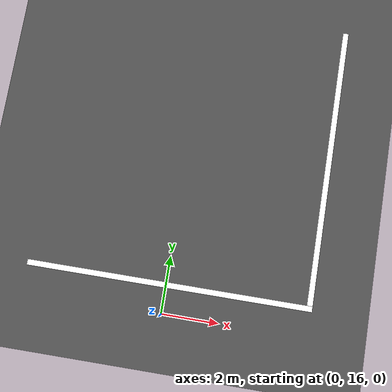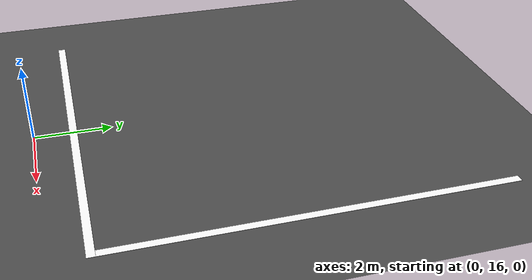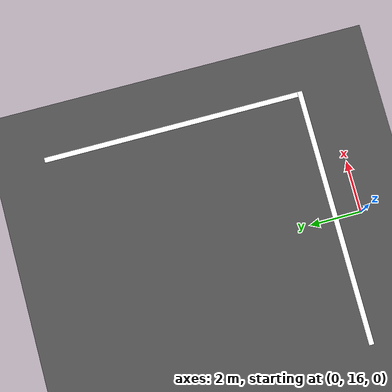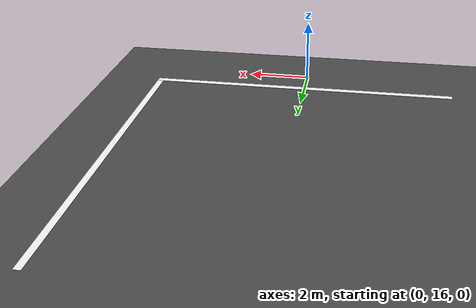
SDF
<?xml version="1.0" ?>
<sdf version='1.4'>
  <world name='default'>

    <physics type='ode'>
      <max_step_size>0.001</max_step_size>
      <real_time_factor>1</real_time_factor>
      <real_time_update_rate>1000</real_time_update_rate>
      <gravity>0 0 -9.8</gravity>
    </physics>

    <spherical_coordinates>
      <surface_model>EARTH_WGS84</surface_model>
      <latitude_deg>0</latitude_deg>
      <longitude_deg>0</longitude_deg>
      <elevation>0</elevation>
      <heading_deg>0</heading_deg>
    </spherical_coordinates>

    <!-- A global light source -->
   <scene>
      <sky>
        <clouds>
          <speed>12</speed>
        </clouds>
      </sky>
   </scene>

    <include>
      <uri>model://sun</uri>
    </include>

    <model name="ground_plane">
      <static>true</static>
      <link name="link">
        <collision name="collision">
          <geometry>
            <plane>
              <normal>0 0 1</normal>
              <size>100 100</size>
            </plane>
          </geometry>
          <surface>
            <friction>
              <ode>
                <mu>100</mu>
                <mu2>50</mu2>
              </ode>
            </friction>
          </surface>
        </collision>
        <visual name="visual">
          <cast_shadows>false</cast_shadows>
          <geometry>
            <plane>
              <normal>0 0 1</normal>
              <size>100 100</size>
            </plane>
          </geometry>
          <material>
            <script>
              <uri>model://asphalt_plane/materials/scripts</uri>
              <uri>model://asphalt_plane/materials/textures</uri>
              <name>vrc/asphalt</name>
            </script>
          </material>
        </visual>
      </link>
    </model>

    <model name='goal1'>
      <static>1</static>
      <pose>0.1 17.0 0.05 0 0 0</pose>
      <link name='link'>
        <visual name='visual'>
          <cast_shadows>0</cast_shadows>
          <geometry>
            <box>
              <size>10 0.2 0.01</size>
            </box>
          </geometry>
          <material>
            <ambient>1.0 1.0 1.0 1</ambient>
            <diffuse>1.0 1.0 1.0 1</diffuse>
            <specular>0.01 0.01 0.01 1</specular>
            <emissive>0 0 0 1</emissive>
          </material>
        </visual>
        <self_collide>0</self_collide>
        <kinematic>0</kinematic>
        <gravity>1</gravity>
      </link>
    </model>

    <model name='goal2'>
      <static>1</static>
      <pose>5.0 22.1 0.05 0 0 0</pose>
      <link name='link'>
        <visual name='visual'>
          <cast_shadows>0</cast_shadows>
          <geometry>
            <box>
              <size>0.2 10 0.01</size>
            </box>
          </geometry>
          <material>
            <ambient>1.0 1.0 1.0 1</ambient>
            <diffuse>1.0 1.0 1.0 1</diffuse>
            <specular>0.01 0.01 0.01 1</specular>
            <emissive>0 0 0 1</emissive>
          </material>
        </visual>
        <self_collide>0</self_collide>
        <kinematic>0</kinematic>
        <gravity>1</gravity>
      </link>
    </model>

    <plugin filename="libmbzirc2020_task2_rubble_plugin.so" name="rubble1">
      <bottom_right>8.0 40.0 0.0</bottom_right>
      <top_left>10.0 42.0 1.0</top_left>
      <brick_size>0.3 0.2 0.2</brick_size>
      <brick_color>1.0 0.0 0.0</brick_color>
      <brick_mass>0.381</brick_mass>
      <count>50</count>
    </plugin>

    <plugin filename="libmbzirc2020_task2_rubble_plugin.so" name="rubble2">
      <bottom_right>2.0 40.0 0.0</bottom_right>
      <top_left>4.0 42.0 1.0</top_left>
      <brick_size>0.6 0.2 0.2</brick_size>
      <brick_color>0.0 1.0 0.0</brick_color>
      <brick_mass>0.485</brick_mass>
      <count>50</count>
    </plugin>

    <plugin filename="libmbzirc2020_task2_rubble_plugin.so" name="rubble3">
      <bottom_right>-4.0 40 0.0</bottom_right>
      <top_left>-2.0 42.0 1.0</top_left>
      <brick_size>1.2 0.2 0.2</brick_size>
      <brick_color>0.0 0.0 1.0</brick_color>
      <brick_mass>0.907</brick_mass>
      <count>50</count>
    </plugin>

    <plugin filename="libmbzirc2020_task2_rubble_plugin.so" name="rubble4">
      <bottom_right>-10.0 40 0.0</bottom_right>
      <top_left>-8.0 42.0 1.0</top_left>
      <brick_size>1.8 0.2 0.2</brick_size>
      <brick_color>1.0 0.647 0.0</brick_color>
      <brick_mass>1.2</brick_mass>
      <count>50</count>
    </plugin>

  </world>
</sdf>
